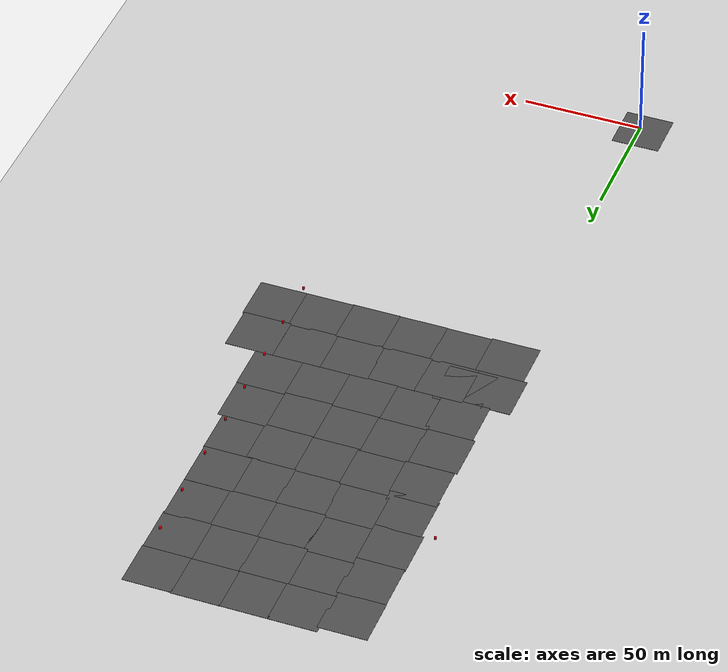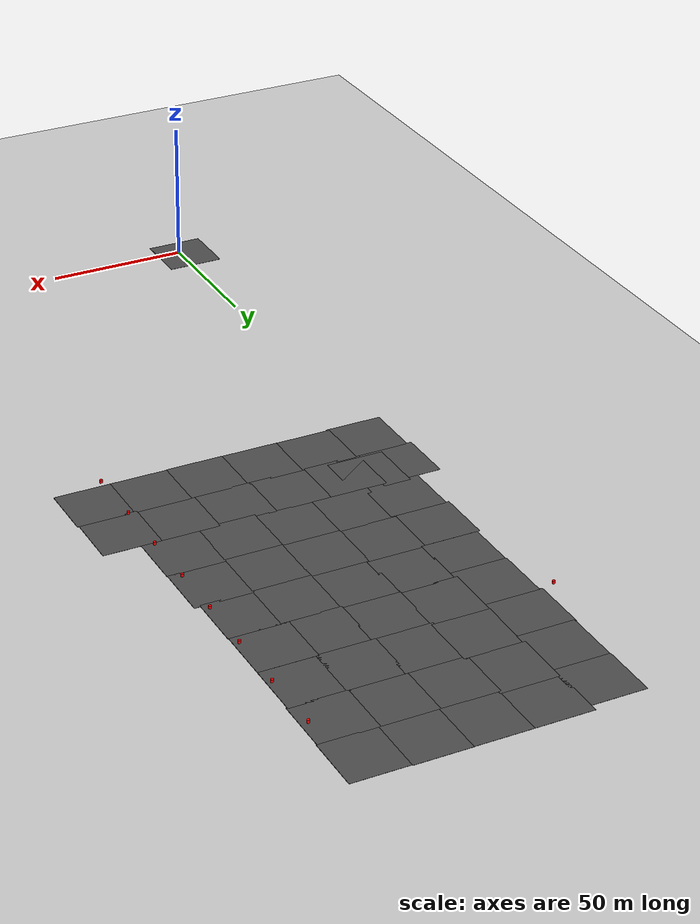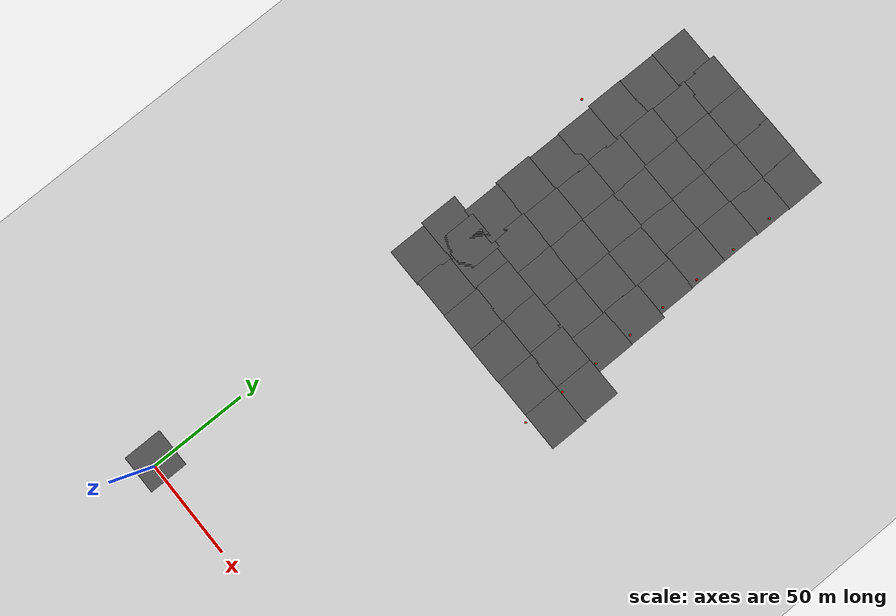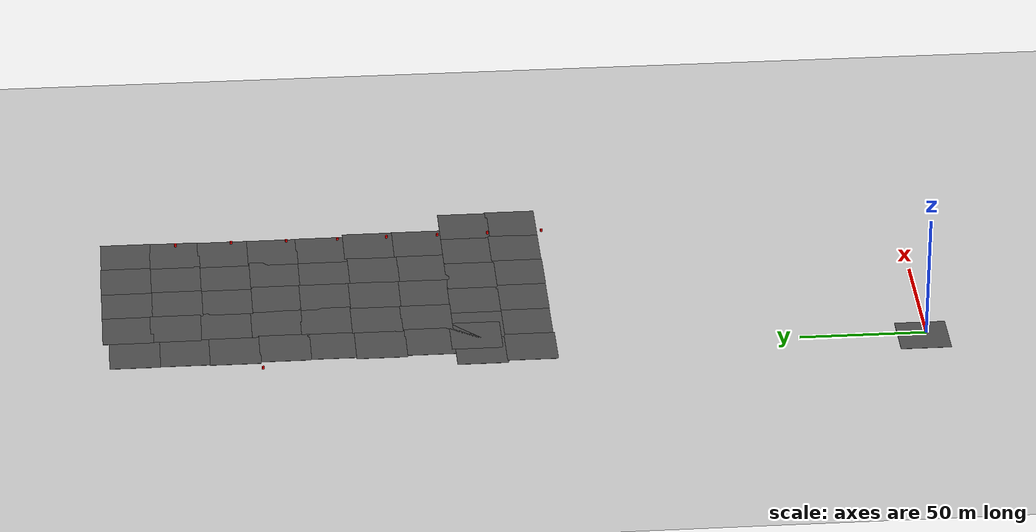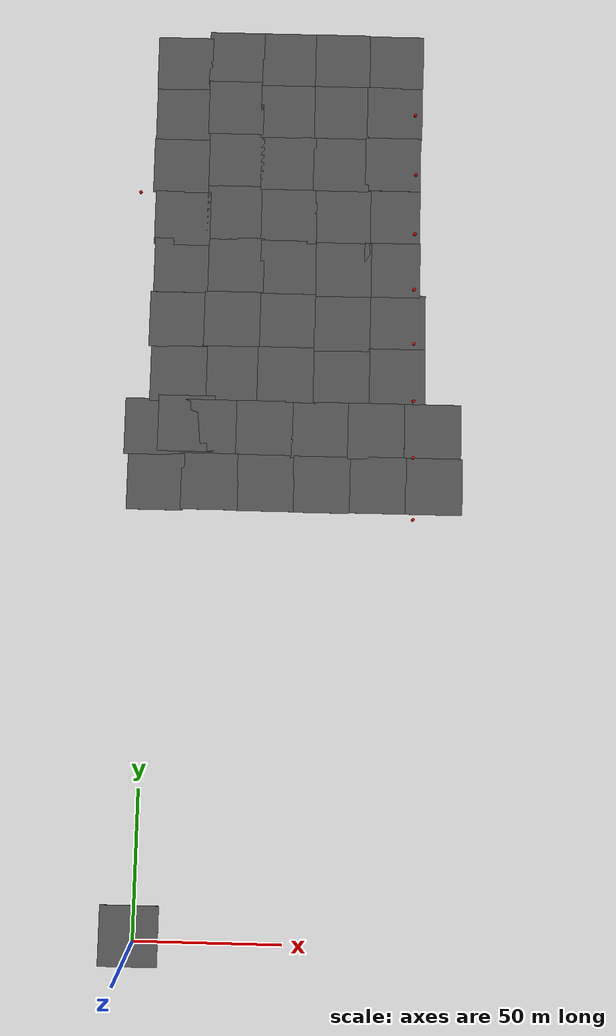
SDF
<sdf version="1.6">
 <world name="default">
  <model name="ground_plane">
   <static>1</static>
   <link name="link">
    <collision name="collision">
     <geometry><plane><normal>0 0 1</normal><size>100 100</size></plane></geometry>
     <surface>
      <contact><collide_bitmask>65535</collide_bitmask></contact>
      <friction><ode><mu>100</mu><mu2>50</mu2></ode></friction>
     </surface>
    </collision>
    <visual name="visual">
     <cast_shadows>0</cast_shadows>
     <geometry><plane><normal>0 0 1</normal><size>100 100</size></plane></geometry>
     <material>
      <script><uri>file://media/materials/scripts/gazebo.material</uri><name>Gazebo/Grey</name></script>
     </material>
    </visual>
   </link>
  </model>
  <model name="asphalt_plane">
   <static>1</static>
   <link name="link">
    <collision name="collision"><geometry><box><size>20 20 0.1</size></box></geometry></collision>
    <visual name="visual">
     <cast_shadows>0</cast_shadows>
     <geometry><box><size>20 20 0.1</size></box></geometry>
     <material>
      <script>
       <uri>model://asphalt_plane/materials/scripts</uri>
       <uri>model://asphalt_plane/materials/textures</uri>
       <name>vrc/asphalt</name>
      </script>
     </material>
    </visual>
   </link>
   <pose>-1.68563 1.69754 0 0 -0 0</pose>
  </model>
  <model name="asphalt_plane_188">
   <static>1</static>
   <link name="link">
    <collision name="collision"><geometry><box><size>20 20 0.1</size></box></geometry></collision>
    <visual name="visual">
     <cast_shadows>0</cast_shadows>
     <geometry><box><size>20 20 0.1</size></box></geometry>
     <material>
      <script>
       <uri>model://asphalt_plane/materials/scripts</uri>
       <uri>model://asphalt_plane/materials/textures</uri>
       <name>vrc/asphalt</name>
      </script>
     </material>
    </visual>
   </link>
   <pose>11.814 176.875 0 0 -0 0</pose>
  </model>
  <model name="asphalt_plane_189">
   <static>1</static>
   <link name="link">
    <collision name="collision"><geometry><box><size>20 20 0.1</size></box></geometry></collision>
    <visual name="visual">
     <cast_shadows>0</cast_shadows>
     <geometry><box><size>20 20 0.1</size></box></geometry>
     <material>
      <script>
       <uri>model://asphalt_plane/materials/scripts</uri>
       <uri>model://asphalt_plane/materials/textures</uri>
       <name>vrc/asphalt</name>
      </script>
     </material>
    </visual>
   </link>
   <pose>1.70504 155.863 0 0 -0 0</pose>
  </model>
  <model name="asphalt_plane_190">
   <static>1</static>
   <link name="link">
    <collision name="collision"><geometry><box><size>20 20 0.1</size></box></geometry></collision>
    <visual name="visual">
     <cast_shadows>0</cast_shadows>
     <geometry><box><size>20 20 0.1</size></box></geometry>
     <material>
      <script>
       <uri>model://asphalt_plane/materials/scripts</uri>
       <uri>model://asphalt_plane/materials/textures</uri>
       <name>vrc/asphalt</name>
      </script>
     </material>
    </visual>
   </link>
   <pose>20.7015 156.377 0 0 -0 0</pose>
  </model>
  <model name="asphalt_plane_191">
   <static>1</static>
   <link name="link">
    <collision name="collision"><geometry><box><size>20 20 0.1</size></box></geometry></collision>
    <visual name="visual">
     <cast_shadows>0</cast_shadows>
     <geometry><box><size>20 20 0.1</size></box></geometry>
     <material>
      <script>
       <uri>model://asphalt_plane/materials/scripts</uri>
       <uri>model://asphalt_plane/materials/textures</uri>
       <name>vrc/asphalt</name>
      </script>
     </material>
    </visual>
   </link>
   <pose>40.4194 156.241 0 0 -0 0</pose>
  </model>
  <model name="asphalt_plane_192">
   <static>1</static>
   <link name="link">
    <collision name="collision"><geometry><box><size>20 20 0.1</size></box></geometry></collision>
    <visual name="visual">
     <cast_shadows>0</cast_shadows>
     <geometry><box><size>20 20 0.1</size></box></geometry>
     <material>
      <script>
       <uri>model://asphalt_plane/materials/scripts</uri>
       <uri>model://asphalt_plane/materials/textures</uri>
       <name>vrc/asphalt</name>
      </script>
     </material>
    </visual>
   </link>
   <pose>60.1575 156.136 0 0 -0 0</pose>
  </model>
  <model name="asphalt_plane_193">
   <static>1</static>
   <link name="link">
    <collision name="collision"><geometry><box><size>20 20 0.1</size></box></geometry></collision>
    <visual name="visual">
     <cast_shadows>0</cast_shadows>
     <geometry><box><size>20 20 0.1</size></box></geometry>
     <material>
      <script>
       <uri>model://asphalt_plane/materials/scripts</uri>
       <uri>model://asphalt_plane/materials/textures</uri>
       <name>vrc/asphalt</name>
      </script>
     </material>
    </visual>
   </link>
   <pose>80.0416 156.36 0 0 -0 0</pose>
  </model>
  <model name="asphalt_plane_194">
   <static>1</static>
   <link name="link">
    <collision name="collision"><geometry><box><size>20 20 0.1</size></box></geometry></collision>
    <visual name="visual">
     <cast_shadows>0</cast_shadows>
     <geometry><box><size>20 20 0.1</size></box></geometry>
     <material>
      <script>
       <uri>model://asphalt_plane/materials/scripts</uri>
       <uri>model://asphalt_plane/materials/textures</uri>
       <name>vrc/asphalt</name>
      </script>
     </material>
    </visual>
   </link>
   <pose>99.6645 156.36 0 0 -0 0</pose>
  </model>
  <model name="asphalt_plane_213">
   <static>1</static>
   <link name="link">
    <collision name="collision"><geometry><box><size>20 20 0.1</size></box></geometry></collision>
    <visual name="visual">
     <cast_shadows>0</cast_shadows>
     <geometry><box><size>20 20 0.1</size></box></geometry>
     <material>
      <script>
       <uri>model://asphalt_plane/materials/scripts</uri>
       <uri>model://asphalt_plane/materials/textures</uri>
       <name>vrc/asphalt</name>
      </script>
     </material>
    </visual>
   </link>
   <pose>99.077 175.627 0 0 -0 0</pose>
  </model>
  <model name="asphalt_plane_214">
   <static>1</static>
   <link name="link">
    <collision name="collision"><geometry><box><size>20 20 0.1</size></box></geometry></collision>
    <visual name="visual">
     <cast_shadows>0</cast_shadows>
     <geometry><box><size>20 20 0.1</size></box></geometry>
     <material>
      <script>
       <uri>model://asphalt_plane/materials/scripts</uri>
       <uri>model://asphalt_plane/materials/textures</uri>
       <name>vrc/asphalt</name>
      </script>
     </material>
    </visual>
   </link>
   <pose>79.0684 175.612 0 0 -0 0</pose>
  </model>
  <model name="asphalt_plane_215">
   <static>1</static>
   <link name="link">
    <collision name="collision"><geometry><box><size>20 20 0.1</size></box></geometry></collision>
    <visual name="visual">
     <cast_shadows>0</cast_shadows>
     <geometry><box><size>20 20 0.1</size></box></geometry>
     <material>
      <script>
       <uri>model://asphalt_plane/materials/scripts</uri>
       <uri>model://asphalt_plane/materials/textures</uri>
       <name>vrc/asphalt</name>
      </script>
     </material>
    </visual>
   </link>
   <pose>59.1652 175.581 0 0 -0 0</pose>
  </model>
  <model name="asphalt_plane_216">
   <static>1</static>
   <link name="link">
    <collision name="collision"><geometry><box><size>20 20 0.1</size></box></geometry></collision>
    <visual name="visual">
     <cast_shadows>0</cast_shadows>
     <geometry><box><size>20 20 0.1</size></box></geometry>
     <material>
      <script>
       <uri>model://asphalt_plane/materials/scripts</uri>
       <uri>model://asphalt_plane/materials/textures</uri>
       <name>vrc/asphalt</name>
      </script>
     </material>
    </visual>
   </link>
   <pose>39.5446 175.578 0 0 -0 0</pose>
  </model>
  <model name="asphalt_plane_217">
   <static>1</static>
   <link name="link">
    <collision name="collision"><geometry><box><size>20 20 0.1</size></box></geometry></collision>
    <visual name="visual">
     <cast_shadows>0</cast_shadows>
     <geometry><box><size>20 20 0.1</size></box></geometry>
     <material>
      <script>
       <uri>model://asphalt_plane/materials/scripts</uri>
       <uri>model://asphalt_plane/materials/textures</uri>
       <name>vrc/asphalt</name>
      </script>
     </material>
    </visual>
   </link>
   <pose>19.8333 175.547 0 0 -0 0</pose>
  </model>
  <model name="asphalt_plane_218">
   <static>1</static>
   <link name="link">
    <collision name="collision"><geometry><box><size>20 20 0.1</size></box></geometry></collision>
    <visual name="visual">
     <cast_shadows>0</cast_shadows>
     <geometry><box><size>20 20 0.1</size></box></geometry>
     <material>
      <script>
       <uri>model://asphalt_plane/materials/scripts</uri>
       <uri>model://asphalt_plane/materials/textures</uri>
       <name>vrc/asphalt</name>
      </script>
     </material>
    </visual>
   </link>
   <pose>0.081188 175.523 0 0 -0 0</pose>
  </model>
  <model name="asphalt_plane_293">
   <static>1</static>
   <link name="link">
    <collision name="collision"><geometry><box><size>20 20 0.1</size></box></geometry></collision>
    <visual name="visual">
     <cast_shadows>0</cast_shadows>
     <geometry><box><size>20 20 0.1</size></box></geometry>
     <material>
      <script>
       <uri>model://asphalt_plane/materials/scripts</uri>
       <uri>model://asphalt_plane/materials/textures</uri>
       <name>vrc/asphalt</name>
      </script>
     </material>
    </visual>
   </link>
   <pose>86.2012 195.402 0 0 -0 0</pose>
  </model>
  <model name="asphalt_plane_294">
   <static>1</static>
   <link name="link">
    <collision name="collision"><geometry><box><size>20 20 0.1</size></box></geometry></collision>
    <visual name="visual">
     <cast_shadows>0</cast_shadows>
     <geometry><box><size>20 20 0.1</size></box></geometry>
     <material>
      <script>
       <uri>model://asphalt_plane/materials/scripts</uri>
       <uri>model://asphalt_plane/materials/textures</uri>
       <name>vrc/asphalt</name>
      </script>
     </material>
    </visual>
   </link>
   <pose>86.0235 215.112 0 0 -0 0</pose>
  </model>
  <model name="asphalt_plane_295">
   <static>1</static>
   <link name="link">
    <collision name="collision"><geometry><box><size>20 20 0.1</size></box></geometry></collision>
    <visual name="visual">
     <cast_shadows>0</cast_shadows>
     <geometry><box><size>20 20 0.1</size></box></geometry>
     <material>
      <script>
       <uri>model://asphalt_plane/materials/scripts</uri>
       <uri>model://asphalt_plane/materials/textures</uri>
       <name>vrc/asphalt</name>
      </script>
     </material>
    </visual>
   </link>
   <pose>83.9783 234.342 0 0 -0 0</pose>
  </model>
  <model name="asphalt_plane_296">
   <static>1</static>
   <link name="link">
    <collision name="collision"><geometry><box><size>20 20 0.1</size></box></geometry></collision>
    <visual name="visual">
     <cast_shadows>0</cast_shadows>
     <geometry><box><size>20 20 0.1</size></box></geometry>
     <material>
      <script>
       <uri>model://asphalt_plane/materials/scripts</uri>
       <uri>model://asphalt_plane/materials/textures</uri>
       <name>vrc/asphalt</name>
      </script>
     </material>
    </visual>
   </link>
   <pose>83.7464 253.921 0 0 -0 0</pose>
  </model>
  <model name="asphalt_plane_297">
   <static>1</static>
   <link name="link">
    <collision name="collision"><geometry><box><size>20 20 0.1</size></box></geometry></collision>
    <visual name="visual">
     <cast_shadows>0</cast_shadows>
     <geometry><box><size>20 20 0.1</size></box></geometry>
     <material>
      <script>
       <uri>model://asphalt_plane/materials/scripts</uri>
       <uri>model://asphalt_plane/materials/textures</uri>
       <name>vrc/asphalt</name>
      </script>
     </material>
    </visual>
   </link>
   <pose>83.745 273.939 0 0 -0 0</pose>
  </model>
  <model name="asphalt_plane_298">
   <static>1</static>
   <link name="link">
    <collision name="collision"><geometry><box><size>20 20 0.1</size></box></geometry></collision>
    <visual name="visual">
     <cast_shadows>0</cast_shadows>
     <geometry><box><size>20 20 0.1</size></box></geometry>
     <material>
      <script>
       <uri>model://asphalt_plane/materials/scripts</uri>
       <uri>model://asphalt_plane/materials/textures</uri>
       <name>vrc/asphalt</name>
      </script>
     </material>
    </visual>
   </link>
   <pose>84.1282 293.247 0 0 -0 0</pose>
  </model>
  <model name="asphalt_plane_299">
   <static>1</static>
   <link name="link">
    <collision name="collision"><geometry><box><size>20 20 0.1</size></box></geometry></collision>
    <visual name="visual">
     <cast_shadows>0</cast_shadows>
     <geometry><box><size>20 20 0.1</size></box></geometry>
     <material>
      <script>
       <uri>model://asphalt_plane/materials/scripts</uri>
       <uri>model://asphalt_plane/materials/textures</uri>
       <name>vrc/asphalt</name>
      </script>
     </material>
    </visual>
   </link>
   <pose>84.3716 312.909 0 0 -0 0</pose>
  </model>
  <model name="asphalt_plane_300">
   <static>1</static>
   <link name="link">
    <collision name="collision"><geometry><box><size>20 20 0.1</size></box></geometry></collision>
    <visual name="visual">
     <cast_shadows>0</cast_shadows>
     <geometry><box><size>20 20 0.1</size></box></geometry>
     <material>
      <script>
       <uri>model://asphalt_plane/materials/scripts</uri>
       <uri>model://asphalt_plane/materials/textures</uri>
       <name>vrc/asphalt</name>
      </script>
     </material>
    </visual>
   </link>
   <pose>66.419 194.334 0 0 -0 0</pose>
  </model>
  <model name="asphalt_plane_301">
   <static>1</static>
   <link name="link">
    <collision name="collision"><geometry><box><size>20 20 0.1</size></box></geometry></collision>
    <visual name="visual">
     <cast_shadows>0</cast_shadows>
     <geometry><box><size>20 20 0.1</size></box></geometry>
     <material>
      <script>
       <uri>model://asphalt_plane/materials/scripts</uri>
       <uri>model://asphalt_plane/materials/textures</uri>
       <name>vrc/asphalt</name>
      </script>
     </material>
    </visual>
   </link>
   <pose>66.3749 214.155 0 0 -0 0</pose>
  </model>
  <model name="asphalt_plane_302">
   <static>1</static>
   <link name="link">
    <collision name="collision"><geometry><box><size>20 20 0.1</size></box></geometry></collision>
    <visual name="visual">
     <cast_shadows>0</cast_shadows>
     <geometry><box><size>20 20 0.1</size></box></geometry>
     <material>
      <script>
       <uri>model://asphalt_plane/materials/scripts</uri>
       <uri>model://asphalt_plane/materials/textures</uri>
       <name>vrc/asphalt</name>
      </script>
     </material>
    </visual>
   </link>
   <pose>66.4444 234.048 0 0 -0 0</pose>
  </model>
  <model name="asphalt_plane_303">
   <static>1</static>
   <link name="link">
    <collision name="collision"><geometry><box><size>20 20 0.1</size></box></geometry></collision>
    <visual name="visual">
     <cast_shadows>0</cast_shadows>
     <geometry><box><size>20 20 0.1</size></box></geometry>
     <material>
      <script>
       <uri>model://asphalt_plane/materials/scripts</uri>
       <uri>model://asphalt_plane/materials/textures</uri>
       <name>vrc/asphalt</name>
      </script>
     </material>
    </visual>
   </link>
   <pose>65.8738 253.625 0 0 -0 0</pose>
  </model>
  <model name="asphalt_plane_304">
   <static>1</static>
   <link name="link">
    <collision name="collision"><geometry><box><size>20 20 0.1</size></box></geometry></collision>
    <visual name="visual">
     <cast_shadows>0</cast_shadows>
     <geometry><box><size>20 20 0.1</size></box></geometry>
     <material>
      <script>
       <uri>model://asphalt_plane/materials/scripts</uri>
       <uri>model://asphalt_plane/materials/textures</uri>
       <name>vrc/asphalt</name>
      </script>
     </material>
    </visual>
   </link>
   <pose>64.864 273.46 0 0 -0 0</pose>
  </model>
  <model name="asphalt_plane_305">
   <static>1</static>
   <link name="link">
    <collision name="collision"><geometry><box><size>20 20 0.1</size></box></geometry></collision>
    <visual name="visual">
     <cast_shadows>0</cast_shadows>
     <geometry><box><size>20 20 0.1</size></box></geometry>
     <material>
      <script>
       <uri>model://asphalt_plane/materials/scripts</uri>
       <uri>model://asphalt_plane/materials/textures</uri>
       <name>vrc/asphalt</name>
      </script>
     </material>
    </visual>
   </link>
   <pose>64.8502 293.361 0 0 -0 0</pose>
  </model>
  <model name="asphalt_plane_306">
   <static>1</static>
   <link name="link">
    <collision name="collision"><geometry><box><size>20 20 0.1</size></box></geometry></collision>
    <visual name="visual">
     <cast_shadows>0</cast_shadows>
     <geometry><box><size>20 20 0.1</size></box></geometry>
     <material>
      <script>
       <uri>model://asphalt_plane/materials/scripts</uri>
       <uri>model://asphalt_plane/materials/textures</uri>
       <name>vrc/asphalt</name>
      </script>
     </material>
    </visual>
   </link>
   <pose>64.8115 313.188 0 0 -0 0</pose>
  </model>
  <model name="asphalt_plane_307">
   <static>1</static>
   <link name="link">
    <collision name="collision"><geometry><box><size>20 20 0.1</size></box></geometry></collision>
    <visual name="visual">
     <cast_shadows>0</cast_shadows>
     <geometry><box><size>20 20 0.1</size></box></geometry>
     <material>
      <script>
       <uri>model://asphalt_plane/materials/scripts</uri>
       <uri>model://asphalt_plane/materials/textures</uri>
       <name>vrc/asphalt</name>
      </script>
     </material>
    </visual>
   </link>
   <pose>46.5167 195.223 0 0 -0 0</pose>
  </model>
  <model name="asphalt_plane_308">
   <static>1</static>
   <link name="link">
    <collision name="collision"><geometry><box><size>20 20 0.1</size></box></geometry></collision>
    <visual name="visual">
     <cast_shadows>0</cast_shadows>
     <geometry><box><size>20 20 0.1</size></box></geometry>
     <material>
      <script>
       <uri>model://asphalt_plane/materials/scripts</uri>
       <uri>model://asphalt_plane/materials/textures</uri>
       <name>vrc/asphalt</name>
      </script>
     </material>
    </visual>
   </link>
   <pose>46.6214 214.788 0 0 -0 0</pose>
  </model>
  <model name="asphalt_plane_309">
   <static>1</static>
   <link name="link">
    <collision name="collision"><geometry><box><size>20 20 0.1</size></box></geometry></collision>
    <visual name="visual">
     <cast_shadows>0</cast_shadows>
     <geometry><box><size>20 20 0.1</size></box></geometry>
     <material>
      <script>
       <uri>model://asphalt_plane/materials/scripts</uri>
       <uri>model://asphalt_plane/materials/textures</uri>
       <name>vrc/asphalt</name>
      </script>
     </material>
    </visual>
   </link>
   <pose>46.5837 234.467 0 0 -0 0</pose>
  </model>
  <model name="asphalt_plane_310">
   <static>1</static>
   <link name="link">
    <collision name="collision"><geometry><box><size>20 20 0.1</size></box></geometry></collision>
    <visual name="visual">
     <cast_shadows>0</cast_shadows>
     <geometry><box><size>20 20 0.1</size></box></geometry>
     <material>
      <script>
       <uri>model://asphalt_plane/materials/scripts</uri>
       <uri>model://asphalt_plane/materials/textures</uri>
       <name>vrc/asphalt</name>
      </script>
     </material>
    </visual>
   </link>
   <pose>46.3901 253.566 0 0 -0 0</pose>
  </model>
  <model name="asphalt_plane_311">
   <static>1</static>
   <link name="link">
    <collision name="collision"><geometry><box><size>20 20 0.1</size></box></geometry></collision>
    <visual name="visual">
     <cast_shadows>0</cast_shadows>
     <geometry><box><size>20 20 0.1</size></box></geometry>
     <material>
      <script>
       <uri>model://asphalt_plane/materials/scripts</uri>
       <uri>model://asphalt_plane/materials/textures</uri>
       <name>vrc/asphalt</name>
      </script>
     </material>
    </visual>
   </link>
   <pose>45.7205 273.467 0 0 -0 0</pose>
  </model>
  <model name="asphalt_plane_312">
   <static>1</static>
   <link name="link">
    <collision name="collision"><geometry><box><size>20 20 0.1</size></box></geometry></collision>
    <visual name="visual">
     <cast_shadows>0</cast_shadows>
     <geometry><box><size>20 20 0.1</size></box></geometry>
     <material>
      <script>
       <uri>model://asphalt_plane/materials/scripts</uri>
       <uri>model://asphalt_plane/materials/textures</uri>
       <name>vrc/asphalt</name>
      </script>
     </material>
    </visual>
   </link>
   <pose>45.2565 293.234 0 0 -0 0</pose>
  </model>
  <model name="asphalt_plane_313">
   <static>1</static>
   <link name="link">
    <collision name="collision"><geometry><box><size>20 20 0.1</size></box></geometry></collision>
    <visual name="visual">
     <cast_shadows>0</cast_shadows>
     <geometry><box><size>20 20 0.1</size></box></geometry>
     <material>
      <script>
       <uri>model://asphalt_plane/materials/scripts</uri>
       <uri>model://asphalt_plane/materials/textures</uri>
       <name>vrc/asphalt</name>
      </script>
     </material>
    </visual>
   </link>
   <pose>45.4084 313.113 0 0 -0 0</pose>
  </model>
  <model name="asphalt_plane_314">
   <static>1</static>
   <link name="link">
    <collision name="collision"><geometry><box><size>20 20 0.1</size></box></geometry></collision>
    <visual name="visual">
     <cast_shadows>0</cast_shadows>
     <geometry><box><size>20 20 0.1</size></box></geometry>
     <material>
      <script>
       <uri>model://asphalt_plane/materials/scripts</uri>
       <uri>model://asphalt_plane/materials/textures</uri>
       <name>vrc/asphalt</name>
      </script>
     </material>
    </visual>
   </link>
   <pose>26.7803 195.434 0 0 -0 0</pose>
  </model>
  <model name="asphalt_plane_315">
   <static>1</static>
   <link name="link">
    <collision name="collision"><geometry><box><size>20 20 0.1</size></box></geometry></collision>
    <visual name="visual">
     <cast_shadows>0</cast_shadows>
     <geometry><box><size>20 20 0.1</size></box></geometry>
     <material>
      <script>
       <uri>model://asphalt_plane/materials/scripts</uri>
       <uri>model://asphalt_plane/materials/textures</uri>
       <name>vrc/asphalt</name>
      </script>
     </material>
    </visual>
   </link>
   <pose>26.9599 215.111 0 0 -0 0</pose>
  </model>
  <model name="asphalt_plane_316">
   <static>1</static>
   <link name="link">
    <collision name="collision"><geometry><box><size>20 20 0.1</size></box></geometry></collision>
    <visual name="visual">
     <cast_shadows>0</cast_shadows>
     <geometry><box><size>20 20 0.1</size></box></geometry>
     <material>
      <script>
       <uri>model://asphalt_plane/materials/scripts</uri>
       <uri>model://asphalt_plane/materials/textures</uri>
       <name>vrc/asphalt</name>
      </script>
     </material>
    </visual>
   </link>
   <pose>27.7867 235.099 0 0 -0 0</pose>
  </model>
  <model name="asphalt_plane_317">
   <static>1</static>
   <link name="link">
    <collision name="collision"><geometry><box><size>20 20 0.1</size></box></geometry></collision>
    <visual name="visual">
     <cast_shadows>0</cast_shadows>
     <geometry><box><size>20 20 0.1</size></box></geometry>
     <material>
      <script>
       <uri>model://asphalt_plane/materials/scripts</uri>
       <uri>model://asphalt_plane/materials/textures</uri>
       <name>vrc/asphalt</name>
      </script>
     </material>
    </visual>
   </link>
   <pose>26.8335 254.51 0 0 -0 0</pose>
  </model>
  <model name="asphalt_plane_318">
   <static>1</static>
   <link name="link">
    <collision name="collision"><geometry><box><size>20 20 0.1</size></box></geometry></collision>
    <visual name="visual">
     <cast_shadows>0</cast_shadows>
     <geometry><box><size>20 20 0.1</size></box></geometry>
     <material>
      <script>
       <uri>model://asphalt_plane/materials/scripts</uri>
       <uri>model://asphalt_plane/materials/textures</uri>
       <name>vrc/asphalt</name>
      </script>
     </material>
    </visual>
   </link>
   <pose>26.7861 274.396 0 0 -0 0</pose>
  </model>
  <model name="asphalt_plane_319">
   <static>1</static>
   <link name="link">
    <collision name="collision"><geometry><box><size>20 20 0.1</size></box></geometry></collision>
    <visual name="visual">
     <cast_shadows>0</cast_shadows>
     <geometry><box><size>20 20 0.1</size></box></geometry>
     <material>
      <script>
       <uri>model://asphalt_plane/materials/scripts</uri>
       <uri>model://asphalt_plane/materials/textures</uri>
       <name>vrc/asphalt</name>
      </script>
     </material>
    </visual>
   </link>
   <pose>26.2135 294.256 0 0 -0 0</pose>
  </model>
  <model name="asphalt_plane_320">
   <static>1</static>
   <link name="link">
    <collision name="collision"><geometry><box><size>20 20 0.1</size></box></geometry></collision>
    <visual name="visual">
     <cast_shadows>0</cast_shadows>
     <geometry><box><size>20 20 0.1</size></box></geometry>
     <material>
      <script>
       <uri>model://asphalt_plane/materials/scripts</uri>
       <uri>model://asphalt_plane/materials/textures</uri>
       <name>vrc/asphalt</name>
      </script>
     </material>
    </visual>
   </link>
   <pose>25.8925 313.111 0 0 -0 0</pose>
  </model>
  <model name="asphalt_plane_321">
   <static>1</static>
   <link name="link">
    <collision name="collision"><geometry><box><size>20 20 0.1</size></box></geometry></collision>
    <visual name="visual">
     <cast_shadows>0</cast_shadows>
     <geometry><box><size>20 20 0.1</size></box></geometry>
     <material>
      <script>
       <uri>model://asphalt_plane/materials/scripts</uri>
       <uri>model://asphalt_plane/materials/textures</uri>
       <name>vrc/asphalt</name>
      </script>
     </material>
    </visual>
   </link>
   <pose>8.45198 194.791 0 0 -0 0</pose>
  </model>
  <model name="asphalt_plane_322">
   <static>1</static>
   <link name="link">
    <collision name="collision"><geometry><box><size>20 20 0.1</size></box></geometry></collision>
    <visual name="visual">
     <cast_shadows>0</cast_shadows>
     <geometry><box><size>20 20 0.1</size></box></geometry>
     <material>
      <script>
       <uri>model://asphalt_plane/materials/scripts</uri>
       <uri>model://asphalt_plane/materials/textures</uri>
       <name>vrc/asphalt</name>
      </script>
     </material>
    </visual>
   </link>
   <pose>7.43623 214.447 0 0 -0 0</pose>
  </model>
  <model name="asphalt_plane_330">
   <static>1</static>
   <link name="link">
    <collision name="collision"><geometry><box><size>20 20 0.1</size></box></geometry></collision>
    <visual name="visual">
     <cast_shadows>0</cast_shadows>
     <geometry><box><size>20 20 0.1</size></box></geometry>
     <material>
      <script>
       <uri>model://asphalt_plane/materials/scripts</uri>
       <uri>model://asphalt_plane/materials/textures</uri>
       <name>vrc/asphalt</name>
      </script>
     </material>
    </visual>
   </link>
   <pose>8.35785 234.466 0 0 -0 0</pose>
  </model>
  <model name="asphalt_plane_331">
   <static>1</static>
   <link name="link">
    <collision name="collision"><geometry><box><size>20 20 0.1</size></box></geometry></collision>
    <visual name="visual">
     <cast_shadows>0</cast_shadows>
     <geometry><box><size>20 20 0.1</size></box></geometry>
     <material>
      <script>
       <uri>model://asphalt_plane/materials/scripts</uri>
       <uri>model://asphalt_plane/materials/textures</uri>
       <name>vrc/asphalt</name>
      </script>
     </material>
    </visual>
   </link>
   <pose>7.95368 251.992 0 0 -0 0</pose>
  </model>
  <model name="asphalt_plane_332">
   <static>1</static>
   <link name="link">
    <collision name="collision"><geometry><box><size>20 20 0.1</size></box></geometry></collision>
    <visual name="visual">
     <cast_shadows>0</cast_shadows>
     <geometry><box><size>20 20 0.1</size></box></geometry>
     <material>
      <script>
       <uri>model://asphalt_plane/materials/scripts</uri>
       <uri>model://asphalt_plane/materials/textures</uri>
       <name>vrc/asphalt</name>
      </script>
     </material>
    </visual>
   </link>
   <pose>6.91023 271.609 0 0 -0 0</pose>
  </model>
  <model name="asphalt_plane_333">
   <static>1</static>
   <link name="link">
    <collision name="collision"><geometry><box><size>20 20 0.1</size></box></geometry></collision>
    <visual name="visual">
     <cast_shadows>0</cast_shadows>
     <geometry><box><size>20 20 0.1</size></box></geometry>
     <material>
      <script>
       <uri>model://asphalt_plane/materials/scripts</uri>
       <uri>model://asphalt_plane/materials/textures</uri>
       <name>vrc/asphalt</name>
      </script>
     </material>
    </visual>
   </link>
   <pose>7.21781 290.907 0 0 -0 0</pose>
  </model>
  <model name="asphalt_plane_334">
   <static>1</static>
   <link name="link">
    <collision name="collision"><geometry><box><size>20 20 0.1</size></box></geometry></collision>
    <visual name="visual">
     <cast_shadows>0</cast_shadows>
     <geometry><box><size>20 20 0.1</size></box></geometry>
     <material>
      <script>
       <uri>model://asphalt_plane/materials/scripts</uri>
       <uri>model://asphalt_plane/materials/textures</uri>
       <name>vrc/asphalt</name>
      </script>
     </material>
    </visual>
   </link>
   <pose>7.02064 310.71 0 0 -0 0</pose>
  </model>
  <model name="station_70">
   <link name="link">
    <inertial>
     <mass>1</mass>
     <inertia><ixx>0.145833</ixx><ixy>0</ixy><ixz>0</ixz><iyy>0.145833</iyy><iyz>0</iyz><izz>0.125</izz></inertia>
    </inertial>
    <visual name="visual">
     <geometry><cylinder><radius>0.5</radius><length>1</length></cylinder></geometry>
     <material>
      <script><name>Gazebo/Grey</name><uri>file://media/materials/scripts/gazebo.material</uri></script>
      <shader type="vertex"><normal_map>__default__</normal_map></shader>
      <ambient>1 0 0 0</ambient>
      <diffuse>0 0 0 1</diffuse>
      <specular>0.91 0.01 0.01 1</specular>
      <emissive>0 0 0 1</emissive>
     </material>
    </visual>
    <collision name="collision">
     <geometry><cylinder><radius>0.5</radius><length>1</length></cylinder></geometry>
     <surface>
      <friction>
       <ode><mu>1</mu><mu2>1</mu2><fdir1>0 0 0</fdir1><slip1>0</slip1><slip2>0</slip2></ode>
       <torsional>
        <coefficient>1</coefficient>
        <patch_radius>0</patch_radius>
        <surface_radius>0</surface_radius>
        <use_patch_radius>1</use_patch_radius>
        <ode><slip>0</slip></ode>
       </torsional>
      </friction>
      <bounce><restitution_coefficient>0</restitution_coefficient><threshold>1e+06</threshold></bounce>
      <contact>
       <collide_without_contact>0</collide_without_contact>
       <collide_without_contact_bitmask>1</collide_without_contact_bitmask>
       <collide_bitmask>1</collide_bitmask>
       <ode>
        <soft_cfm>0</soft_cfm>
        <soft_erp>0.2</soft_erp>
        <kp>1e+13</kp>
        <kd>1</kd>
        <max_vel>0.01</max_vel>
        <min_depth>0</min_depth>
       </ode>
       <bullet>
        <split_impulse>1</split_impulse>
        <split_impulse_penetration_threshold>-0.01</split_impulse_penetration_threshold>
        <soft_cfm>0</soft_cfm>
        <soft_erp>0.2</soft_erp>
        <kp>1e+13</kp>
        <kd>1</kd>
       </bullet>
      </contact>
     </surface>
    </collision>
   </link>
   <static>1</static>
   <pose>92.4065 144.413 0.619557 0 -0 0</pose>
  </model>
  <model name="station_71">
   <link name="link">
    <inertial>
     <mass>1</mass>
     <inertia><ixx>0.145833</ixx><ixy>0</ixy><ixz>0</ixz><iyy>0.145833</iyy><iyz>0</iyz><izz>0.125</izz></inertia>
    </inertial>
    <visual name="visual">
     <geometry><cylinder><radius>0.5</radius><length>1</length></cylinder></geometry>
     <material>
      <script><name>Gazebo/Grey</name><uri>file://media/materials/scripts/gazebo.material</uri></script>
      <shader type="vertex"><normal_map>__default__</normal_map></shader>
      <ambient>1 0 0 0</ambient>
      <diffuse>0 0 0 1</diffuse>
      <specular>0.91 0.01 0.01 1</specular>
      <emissive>0 0 0 1</emissive>
     </material>
    </visual>
    <collision name="collision">
     <geometry><cylinder><radius>0.5</radius><length>1</length></cylinder></geometry>
     <surface>
      <friction>
       <ode><mu>1</mu><mu2>1</mu2><fdir1>0 0 0</fdir1><slip1>0</slip1><slip2>0</slip2></ode>
       <torsional>
        <coefficient>1</coefficient>
        <patch_radius>0</patch_radius>
        <surface_radius>0</surface_radius>
        <use_patch_radius>1</use_patch_radius>
        <ode><slip>0</slip></ode>
       </torsional>
      </friction>
      <bounce><restitution_coefficient>0</restitution_coefficient><threshold>1e+06</threshold></bounce>
      <contact>
       <collide_without_contact>0</collide_without_contact>
       <collide_without_contact_bitmask>1</collide_without_contact_bitmask>
       <collide_bitmask>1</collide_bitmask>
       <ode>
        <soft_cfm>0</soft_cfm>
        <soft_erp>0.2</soft_erp>
        <kp>1e+13</kp>
        <kd>1</kd>
        <max_vel>0.01</max_vel>
        <min_depth>0</min_depth>
       </ode>
       <bullet>
        <split_impulse>1</split_impulse>
        <split_impulse_penetration_threshold>-0.01</split_impulse_penetration_threshold>
        <soft_cfm>0</soft_cfm>
        <soft_erp>0.2</soft_erp>
        <kp>1e+13</kp>
        <kd>1</kd>
       </bullet>
      </contact>
     </surface>
    </collision>
   </link>
   <static>1</static>
   <pose>92.2489 166.326 0.619557 0 -0 0</pose>
  </model>
  <model name="station_72">
   <link name="link">
    <inertial>
     <mass>1</mass>
     <inertia><ixx>0.145833</ixx><ixy>0</ixy><ixz>0</ixz><iyy>0.145833</iyy><iyz>0</iyz><izz>0.125</izz></inertia>
    </inertial>
    <visual name="visual">
     <geometry><cylinder><radius>0.5</radius><length>1</length></cylinder></geometry>
     <material>
      <script><name>Gazebo/Grey</name><uri>file://media/materials/scripts/gazebo.material</uri></script>
      <shader type="vertex"><normal_map>__default__</normal_map></shader>
      <ambient>1 0 0 0</ambient>
      <diffuse>0 0 0 1</diffuse>
      <specular>0.91 0.01 0.01 1</specular>
      <emissive>0 0 0 1</emissive>
     </material>
    </visual>
    <collision name="collision">
     <geometry><cylinder><radius>0.5</radius><length>1</length></cylinder></geometry>
     <surface>
      <friction>
       <ode><mu>1</mu><mu2>1</mu2><fdir1>0 0 0</fdir1><slip1>0</slip1><slip2>0</slip2></ode>
       <torsional>
        <coefficient>1</coefficient>
        <patch_radius>0</patch_radius>
        <surface_radius>0</surface_radius>
        <use_patch_radius>1</use_patch_radius>
        <ode><slip>0</slip></ode>
       </torsional>
      </friction>
      <bounce><restitution_coefficient>0</restitution_coefficient><threshold>1e+06</threshold></bounce>
      <contact>
       <collide_without_contact>0</collide_without_contact>
       <collide_without_contact_bitmask>1</collide_without_contact_bitmask>
       <collide_bitmask>1</collide_bitmask>
       <ode>
        <soft_cfm>0</soft_cfm>
        <soft_erp>0.2</soft_erp>
        <kp>1e+13</kp>
        <kd>1</kd>
        <max_vel>0.01</max_vel>
        <min_depth>0</min_depth>
       </ode>
       <bullet>
        <split_impulse>1</split_impulse>
        <split_impulse_penetration_threshold>-0.01</split_impulse_penetration_threshold>
        <soft_cfm>0</soft_cfm>
        <soft_erp>0.2</soft_erp>
        <kp>1e+13</kp>
        <kd>1</kd>
       </bullet>
      </contact>
     </surface>
    </collision>
   </link>
   <static>1</static>
   <pose>92.0767 186.661 0.619557 0 -0 0</pose>
  </model>
  <model name="station_73">
   <link name="link">
    <inertial>
     <mass>1</mass>
     <inertia><ixx>0.145833</ixx><ixy>0</ixy><ixz>0</ixz><iyy>0.145833</iyy><iyz>0</iyz><izz>0.125</izz></inertia>
    </inertial>
    <visual name="visual">
     <geometry><cylinder><radius>0.5</radius><length>1</length></cylinder></geometry>
     <material>
      <script><name>Gazebo/Grey</name><uri>file://media/materials/scripts/gazebo.material</uri></script>
      <shader type="vertex"><normal_map>__default__</normal_map></shader>
      <ambient>1 0 0 0</ambient>
      <diffuse>0 0 0 1</diffuse>
      <specular>0.91 0.01 0.01 1</specular>
      <emissive>0 0 0 1</emissive>
     </material>
    </visual>
    <collision name="collision">
     <geometry><cylinder><radius>0.5</radius><length>1</length></cylinder></geometry>
     <surface>
      <friction>
       <ode><mu>1</mu><mu2>1</mu2><fdir1>0 0 0</fdir1><slip1>0</slip1><slip2>0</slip2></ode>
       <torsional>
        <coefficient>1</coefficient>
        <patch_radius>0</patch_radius>
        <surface_radius>0</surface_radius>
        <use_patch_radius>1</use_patch_radius>
        <ode><slip>0</slip></ode>
       </torsional>
      </friction>
      <bounce><restitution_coefficient>0</restitution_coefficient><threshold>1e+06</threshold></bounce>
      <contact>
       <collide_without_contact>0</collide_without_contact>
       <collide_without_contact_bitmask>1</collide_without_contact_bitmask>
       <collide_bitmask>1</collide_bitmask>
       <ode>
        <soft_cfm>0</soft_cfm>
        <soft_erp>0.2</soft_erp>
        <kp>1e+13</kp>
        <kd>1</kd>
        <max_vel>0.01</max_vel>
        <min_depth>0</min_depth>
       </ode>
       <bullet>
        <split_impulse>1</split_impulse>
        <split_impulse_penetration_threshold>-0.01</split_impulse_penetration_threshold>
        <soft_cfm>0</soft_cfm>
        <soft_erp>0.2</soft_erp>
        <kp>1e+13</kp>
        <kd>1</kd>
       </bullet>
      </contact>
     </surface>
    </collision>
   </link>
   <static>1</static>
   <pose>91.974 207.371 0.619557 0 -0 0</pose>
  </model>
  <model name="station_74">
   <link name="link">
    <inertial>
     <mass>1</mass>
     <inertia><ixx>0.145833</ixx><ixy>0</ixy><ixz>0</ixz><iyy>0.145833</iyy><iyz>0</iyz><izz>0.125</izz></inertia>
    </inertial>
    <visual name="visual">
     <geometry><cylinder><radius>0.5</radius><length>1</length></cylinder></geometry>
     <material>
      <script><name>Gazebo/Grey</name><uri>file://media/materials/scripts/gazebo.material</uri></script>
      <shader type="vertex"><normal_map>__default__</normal_map></shader>
      <ambient>1 0 0 0</ambient>
      <diffuse>0 0 0 1</diffuse>
      <specular>0.91 0.01 0.01 1</specular>
      <emissive>0 0 0 1</emissive>
     </material>
    </visual>
    <collision name="collision">
     <geometry><cylinder><radius>0.5</radius><length>1</length></cylinder></geometry>
     <surface>
      <friction>
       <ode><mu>1</mu><mu2>1</mu2><fdir1>0 0 0</fdir1><slip1>0</slip1><slip2>0</slip2></ode>
       <torsional>
        <coefficient>1</coefficient>
        <patch_radius>0</patch_radius>
        <surface_radius>0</surface_radius>
        <use_patch_radius>1</use_patch_radius>
        <ode><slip>0</slip></ode>
       </torsional>
      </friction>
      <bounce><restitution_coefficient>0</restitution_coefficient><threshold>1e+06</threshold></bounce>
      <contact>
       <collide_without_contact>0</collide_without_contact>
       <collide_without_contact_bitmask>1</collide_without_contact_bitmask>
       <collide_bitmask>1</collide_bitmask>
       <ode>
        <soft_cfm>0</soft_cfm>
        <soft_erp>0.2</soft_erp>
        <kp>1e+13</kp>
        <kd>1</kd>
        <max_vel>0.01</max_vel>
        <min_depth>0</min_depth>
       </ode>
       <bullet>
        <split_impulse>1</split_impulse>
        <split_impulse_penetration_threshold>-0.01</split_impulse_penetration_threshold>
        <soft_cfm>0</soft_cfm>
        <soft_erp>0.2</soft_erp>
        <kp>1e+13</kp>
        <kd>1</kd>
       </bullet>
      </contact>
     </surface>
    </collision>
   </link>
   <static>1</static>
   <pose>91.8453 227.246 0.619557 0 -0 0</pose>
  </model>
  <model name="station_75">
   <link name="link">
    <inertial>
     <mass>1</mass>
     <inertia><ixx>0.145833</ixx><ixy>0</ixy><ixz>0</ixz><iyy>0.145833</iyy><iyz>0</iyz><izz>0.125</izz></inertia>
    </inertial>
    <visual name="visual">
     <geometry><cylinder><radius>0.5</radius><length>1</length></cylinder></geometry>
     <material>
      <script><name>Gazebo/Grey</name><uri>file://media/materials/scripts/gazebo.material</uri></script>
      <shader type="vertex"><normal_map>__default__</normal_map></shader>
      <ambient>1 0 0 0</ambient>
      <diffuse>0 0 0 1</diffuse>
      <specular>0.91 0.01 0.01 1</specular>
      <emissive>0 0 0 1</emissive>
     </material>
    </visual>
    <collision name="collision">
     <geometry><cylinder><radius>0.5</radius><length>1</length></cylinder></geometry>
     <surface>
      <friction>
       <ode><mu>1</mu><mu2>1</mu2><fdir1>0 0 0</fdir1><slip1>0</slip1><slip2>0</slip2></ode>
       <torsional>
        <coefficient>1</coefficient>
        <patch_radius>0</patch_radius>
        <surface_radius>0</surface_radius>
        <use_patch_radius>1</use_patch_radius>
        <ode><slip>0</slip></ode>
       </torsional>
      </friction>
      <bounce><restitution_coefficient>0</restitution_coefficient><threshold>1e+06</threshold></bounce>
      <contact>
       <collide_without_contact>0</collide_without_contact>
       <collide_without_contact_bitmask>1</collide_without_contact_bitmask>
       <collide_bitmask>1</collide_bitmask>
       <ode>
        <soft_cfm>0</soft_cfm>
        <soft_erp>0.2</soft_erp>
        <kp>1e+13</kp>
        <kd>1</kd>
        <max_vel>0.01</max_vel>
        <min_depth>0</min_depth>
       </ode>
       <bullet>
        <split_impulse>1</split_impulse>
        <split_impulse_penetration_threshold>-0.01</split_impulse_penetration_threshold>
        <soft_cfm>0</soft_cfm>
        <soft_erp>0.2</soft_erp>
        <kp>1e+13</kp>
        <kd>1</kd>
       </bullet>
      </contact>
     </surface>
    </collision>
   </link>
   <static>1</static>
   <pose>91.9066 247.814 0.619557 0 -0 0</pose>
  </model>
  <model name="station_76">
   <link name="link">
    <inertial>
     <mass>1</mass>
     <inertia><ixx>0.145833</ixx><ixy>0</ixy><ixz>0</ixz><iyy>0.145833</iyy><iyz>0</iyz><izz>0.125</izz></inertia>
    </inertial>
    <visual name="visual">
     <geometry><cylinder><radius>0.5</radius><length>1</length></cylinder></geometry>
     <material>
      <script><name>Gazebo/Grey</name><uri>file://media/materials/scripts/gazebo.material</uri></script>
      <shader type="vertex"><normal_map>__default__</normal_map></shader>
      <ambient>1 0 0 0</ambient>
      <diffuse>0 0 0 1</diffuse>
      <specular>0.91 0.01 0.01 1</specular>
      <emissive>0 0 0 1</emissive>
     </material>
    </visual>
    <collision name="collision">
     <geometry><cylinder><radius>0.5</radius><length>1</length></cylinder></geometry>
     <surface>
      <friction>
       <ode><mu>1</mu><mu2>1</mu2><fdir1>0 0 0</fdir1><slip1>0</slip1><slip2>0</slip2></ode>
       <torsional>
        <coefficient>1</coefficient>
        <patch_radius>0</patch_radius>
        <surface_radius>0</surface_radius>
        <use_patch_radius>1</use_patch_radius>
        <ode><slip>0</slip></ode>
       </torsional>
      </friction>
      <bounce><restitution_coefficient>0</restitution_coefficient><threshold>1e+06</threshold></bounce>
      <contact>
       <collide_without_contact>0</collide_without_contact>
       <collide_without_contact_bitmask>1</collide_without_contact_bitmask>
       <collide_bitmask>1</collide_bitmask>
       <ode>
        <soft_cfm>0</soft_cfm>
        <soft_erp>0.2</soft_erp>
        <kp>1e+13</kp>
        <kd>1</kd>
        <max_vel>0.01</max_vel>
        <min_depth>0</min_depth>
       </ode>
       <bullet>
        <split_impulse>1</split_impulse>
        <split_impulse_penetration_threshold>-0.01</split_impulse_penetration_threshold>
        <soft_cfm>0</soft_cfm>
        <soft_erp>0.2</soft_erp>
        <kp>1e+13</kp>
        <kd>1</kd>
       </bullet>
      </contact>
     </surface>
    </collision>
   </link>
   <static>1</static>
   <pose>92.0176 270.083 0.619557 0 -0 0</pose>
  </model>
  <model name="station_77">
   <link name="link">
    <inertial>
     <mass>1</mass>
     <inertia><ixx>0.145833</ixx><ixy>0</ixy><ixz>0</ixz><iyy>0.145833</iyy><iyz>0</iyz><izz>0.125</izz></inertia>
    </inertial>
    <visual name="visual">
     <geometry><cylinder><radius>0.5</radius><length>1</length></cylinder></geometry>
     <material>
      <script><name>Gazebo/Grey</name><uri>file://media/materials/scripts/gazebo.material</uri></script>
      <shader type="vertex"><normal_map>__default__</normal_map></shader>
      <ambient>1 0 0 0</ambient>
      <diffuse>0 0 0 1</diffuse>
      <specular>0.91 0.01 0.01 1</specular>
      <emissive>0 0 0 1</emissive>
     </material>
    </visual>
    <collision name="collision">
     <geometry><cylinder><radius>0.5</radius><length>1</length></cylinder></geometry>
     <surface>
      <friction>
       <ode><mu>1</mu><mu2>1</mu2><fdir1>0 0 0</fdir1><slip1>0</slip1><slip2>0</slip2></ode>
       <torsional>
        <coefficient>1</coefficient>
        <patch_radius>0</patch_radius>
        <surface_radius>0</surface_radius>
        <use_patch_radius>1</use_patch_radius>
        <ode><slip>0</slip></ode>
       </torsional>
      </friction>
      <bounce><restitution_coefficient>0</restitution_coefficient><threshold>1e+06</threshold></bounce>
      <contact>
       <collide_without_contact>0</collide_without_contact>
       <collide_without_contact_bitmask>1</collide_without_contact_bitmask>
       <collide_bitmask>1</collide_bitmask>
       <ode>
        <soft_cfm>0</soft_cfm>
        <soft_erp>0.2</soft_erp>
        <kp>1e+13</kp>
        <kd>1</kd>
        <max_vel>0.01</max_vel>
        <min_depth>0</min_depth>
       </ode>
       <bullet>
        <split_impulse>1</split_impulse>
        <split_impulse_penetration_threshold>-0.01</split_impulse_penetration_threshold>
        <soft_cfm>0</soft_cfm>
        <soft_erp>0.2</soft_erp>
        <kp>1e+13</kp>
        <kd>1</kd>
       </bullet>
      </contact>
     </surface>
    </collision>
   </link>
   <static>1</static>
   <pose>91.5802 292.544 0.619557 0 -0 0</pose>
  </model>
  <model name="station_79">
   <link name="link">
    <inertial>
     <mass>1</mass>
     <inertia><ixx>0.145833</ixx><ixy>0</ixy><ixz>0</ixz><iyy>0.145833</iyy><iyz>0</iyz><izz>0.125</izz></inertia>
    </inertial>
    <visual name="visual">
     <geometry><cylinder><radius>0.5</radius><length>1</length></cylinder></geometry>
     <material>
      <script><name>Gazebo/Grey</name><uri>file://media/materials/scripts/gazebo.material</uri></script>
      <shader type="vertex"><normal_map>__default__</normal_map></shader>
      <ambient>1 0 0 0</ambient>
      <diffuse>0 0 0 1</diffuse>
      <specular>0.91 0.01 0.01 1</specular>
      <emissive>0 0 0 1</emissive>
     </material>
    </visual>
    <collision name="collision">
     <geometry><cylinder><radius>0.5</radius><length>1</length></cylinder></geometry>
     <surface>
      <friction>
       <ode><mu>1</mu><mu2>1</mu2><fdir1>0 0 0</fdir1><slip1>0</slip1><slip2>0</slip2></ode>
       <torsional>
        <coefficient>1</coefficient>
        <patch_radius>0</patch_radius>
        <surface_radius>0</surface_radius>
        <use_patch_radius>1</use_patch_radius>
        <ode><slip>0</slip></ode>
       </torsional>
      </friction>
      <bounce><restitution_coefficient>0</restitution_coefficient><threshold>1e+06</threshold></bounce>
      <contact>
       <collide_without_contact>0</collide_without_contact>
       <collide_without_contact_bitmask>1</collide_without_contact_bitmask>
       <collide_bitmask>1</collide_bitmask>
       <ode>
        <soft_cfm>0</soft_cfm>
        <soft_erp>0.2</soft_erp>
        <kp>1e+13</kp>
        <kd>1</kd>
        <max_vel>0.01</max_vel>
        <min_depth>0</min_depth>
       </ode>
       <bullet>
        <split_impulse>1</split_impulse>
        <split_impulse_penetration_threshold>-0.01</split_impulse_penetration_threshold>
        <soft_cfm>0</soft_cfm>
        <soft_erp>0.2</soft_erp>
        <kp>1e+13</kp>
        <kd>1</kd>
       </bullet>
      </contact>
     </surface>
    </collision>
   </link>
   <static>1</static>
   <pose>-7.43419 261.065 0.619557 0 -0 0</pose>
  </model>
 </world>
</sdf>
